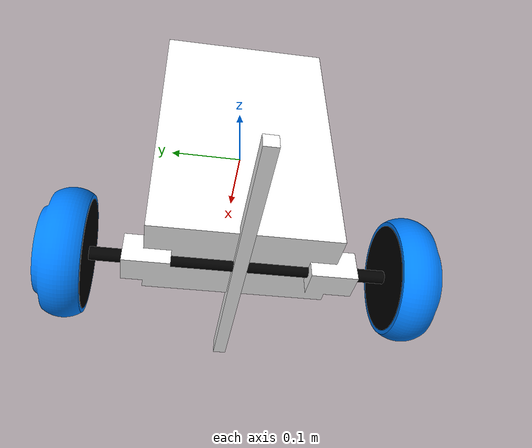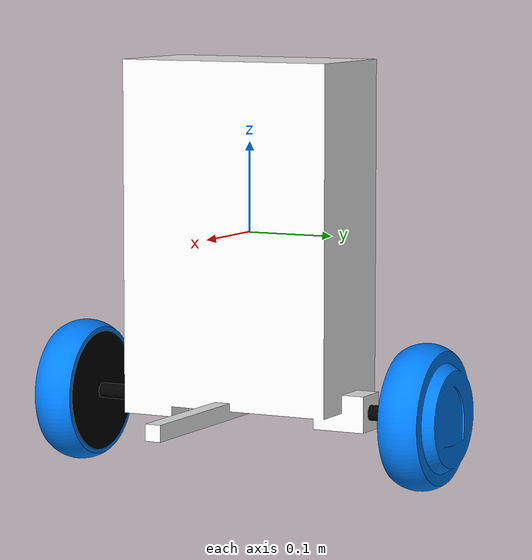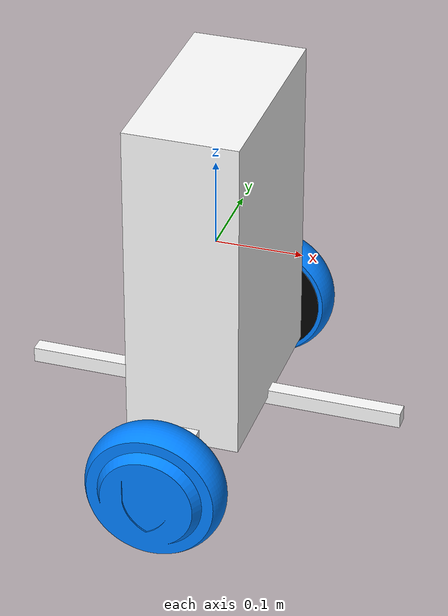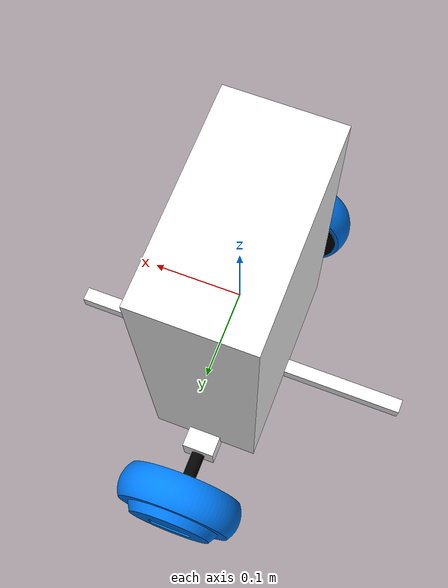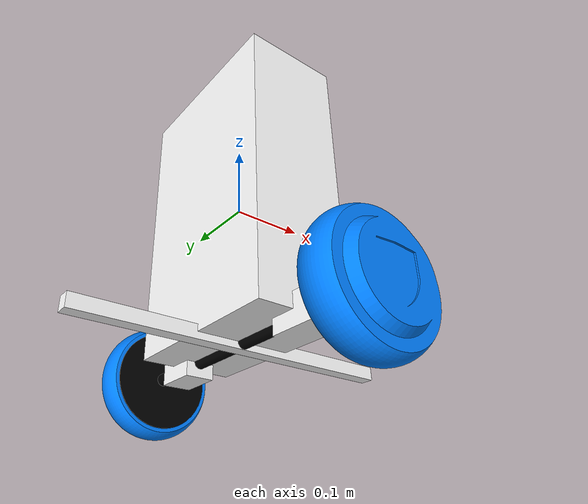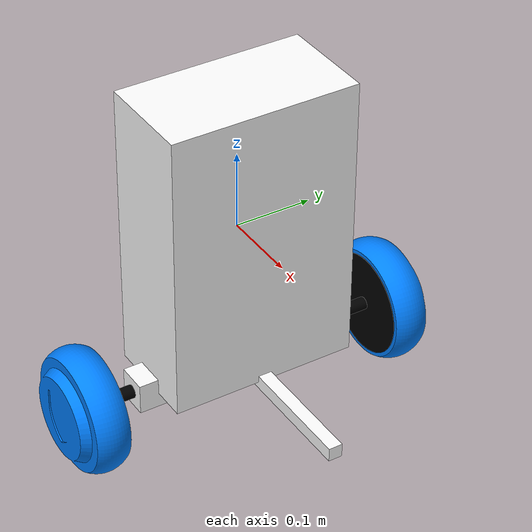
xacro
<?xml version="1.0"?>
<robot xmlns:xacro="http://www.ros.org/wiki/xacro" name="gyrobro">

  <material name="blue">
    <color rgba="0 0.5 1 1"/>
  </material>

  <material name="white">
    <color rgba="1 1 1 1"/>
  </material>

  <material name="black">
    <color rgba="0 0 0 1"/>
  </material>

  <xacro:property name="mesh_addr" value="/home/yoggi/gyrobro/gyrobro_mpc/meshes"/>

  <xacro:property name="body_mass" value="3.29"/>
  <xacro:property name="axis_mass" value="1.124"/>
  <xacro:property name="wheel_mass" value="0.977"/>
  <!-- ДОБАВИТЬ ПОЛОЖЕНИЯ ЦМ И ИНЕРЦИИ! -->
  <xacro:property name="body_cog_x" value="0.0"/>
  <xacro:property name="body_cog_y" value="0.0"/>
  <xacro:property name="body_cog_z" value="0.07"/>

  <xacro:property name="body_ixx" value="1e-3"/>
  <xacro:property name="body_ixy" value="0.0"/>
  <xacro:property name="body_ixz" value="0.0"/>
  <xacro:property name="body_iyy" value="1e-3"/>
  <xacro:property name="body_iyz" value="0.0"/>
  <xacro:property name="body_izz" value="1e-3"/>

  <xacro:property name="wheel_radius" value="0.159"/>

  <!-- Body -->
  <link name="base_link">
    <visual>
      <geometry>
        <mesh filename="${mesh_addr}/body_simple.STL" scale="1 1 1"/>
      </geometry>
      <material name="white"/>
    </visual>
    <collision>
      <geometry>
        <mesh filename="${mesh_addr}/body_simple.STL" scale="1 1 1"/>
      </geometry>
    </collision>
    <inertial>
      <origin rpy="0 0 0" xyz="0 0 0"/>
      <mass value="0.0001"/>
      <inertia ixx="1e-10" ixy="0" ixz="0"
        iyy="1e-10" iyz="0"
        izz="1e-10" />
    </inertial>
  </link>

  <link name="base_inertia">
    <inertial>
      <origin rpy="0 0 0" xyz="${body_cog_x} ${body_cog_y} ${body_cog_z}"/>
      <mass value="${body_mass}"/>
      <inertia ixx="${body_ixx}" ixy="${body_ixy}" ixz="${body_ixz}"
        iyy="${body_iyy}" iyz="${body_iyz}"
        izz="${body_izz}" />
    </inertial>
  </link>
  <joint name="base_link_to_base_inertia" type="fixed">
      <parent link="base_link"/>
      <child link="base_inertia"/>
      <origin rpy="0 0 0" xyz="0 0 0"/>
  </joint>

  <link name="wheel_axis">
    <visual>
      <geometry>
        <mesh filename="${mesh_addr}/axis_simple.STL" scale="1 1 1"/>
      </geometry>
      <material name="black"/>
      <origin xyz="0 0 0" rpy="0 0 0"/>
    </visual>
    <inertial>
      <mass value="${axis_mass}"/>
      <inertia ixx="1e-3" ixy="0.0" ixz="0.0" iyy="1e-3" iyz="0.0" izz="1e-3"/>
    </inertial>
  </link>

  <joint name="base_to_axis" type="fixed">
    <parent link="base_link"/>
    <child link="wheel_axis"/>
    <origin xyz="0 0 -0.19" rpy="0 0 0"/>
  </joint>

  <!-- Left Wheel -->
  <link name="left_wheel">
    <visual>
      <geometry>
        <mesh filename="${mesh_addr}/wheel_simple.STL" scale="1 1 1"/>
      </geometry>
      <material name="blue"/>
      <origin xyz="0 0 0" rpy="0 0 0"/>
    </visual>
    <collision>
      <geometry>
        <mesh filename="${mesh_addr}/wheel_simple.STL" scale="1 1 1"/>
      </geometry>
    </collision>
    <inertial>
      <mass value="${wheel_mass}"/>
      <inertia ixx="1e-3" ixy="0.0" ixz="0.0" iyy="1e-3" iyz="0.0" izz="1e-3"/>
    </inertial>
  </link>

  <joint name="left_wheel_joint" type="continuous">
    <axis xyz="0 0 1"/>
    <origin rpy="-1.57075 0 0" xyz="0.0 0.2115 0"/>
    <parent link="wheel_axis"/>
    <child link="left_wheel"/>
  </joint>

  <!-- Right Wheel -->
  <link name="right_wheel">
    <visual>
      <geometry>
        <mesh filename="${mesh_addr}/wheel_simple.STL" scale="1 1 1"/>
      </geometry>
      <material name="blue"/>
      <origin xyz="0 0 0" rpy="0 0 0"/>
    </visual>
    <collision>
      <geometry>
        <mesh filename="${mesh_addr}/wheel_simple.STL" scale="1 1 1"/>
      </geometry>
    </collision>
    <inertial>
      <mass value="${wheel_mass}"/>
      <inertia ixx="1e-3" ixy="0.0" ixz="0.0" iyy="1e-3" iyz="0.0" izz="1e-3"/>
    </inertial>
  </link>

  <joint name="right_wheel_joint" type="continuous">
    <axis xyz="0 0 1"/>
    <origin rpy="1.57075 0 0" xyz="0.0 -0.2115 0"/>
    <parent link="wheel_axis"/>
    <child link="right_wheel"/>
  </joint>

  <!-- Limiter -->
  <link name="limiter_link">
    <visual>
      <geometry>
        <box size="0.44 0.018 0.018"/>
      </geometry>
      <material name="white"/>
    </visual>
    <collision>
      <geometry>
        <box size="0.44 0.018 0.018"/>
      </geometry>
    </collision>
    <inertial>
      <mass value="0.001"/>
      <inertia ixx="1e-6" ixy="0.0" ixz="0.0" iyy="1e-6" iyz="0.0" izz="1e-6"/>
    </inertial>
  </link>
  <joint name="base_link_to_limiter" type="fixed">
      <parent link="base_link"/>
      <child link="limiter_link"/>
      <origin rpy="0 0 0" xyz="0 0 -0.19"/>
  </joint>

</robot>
